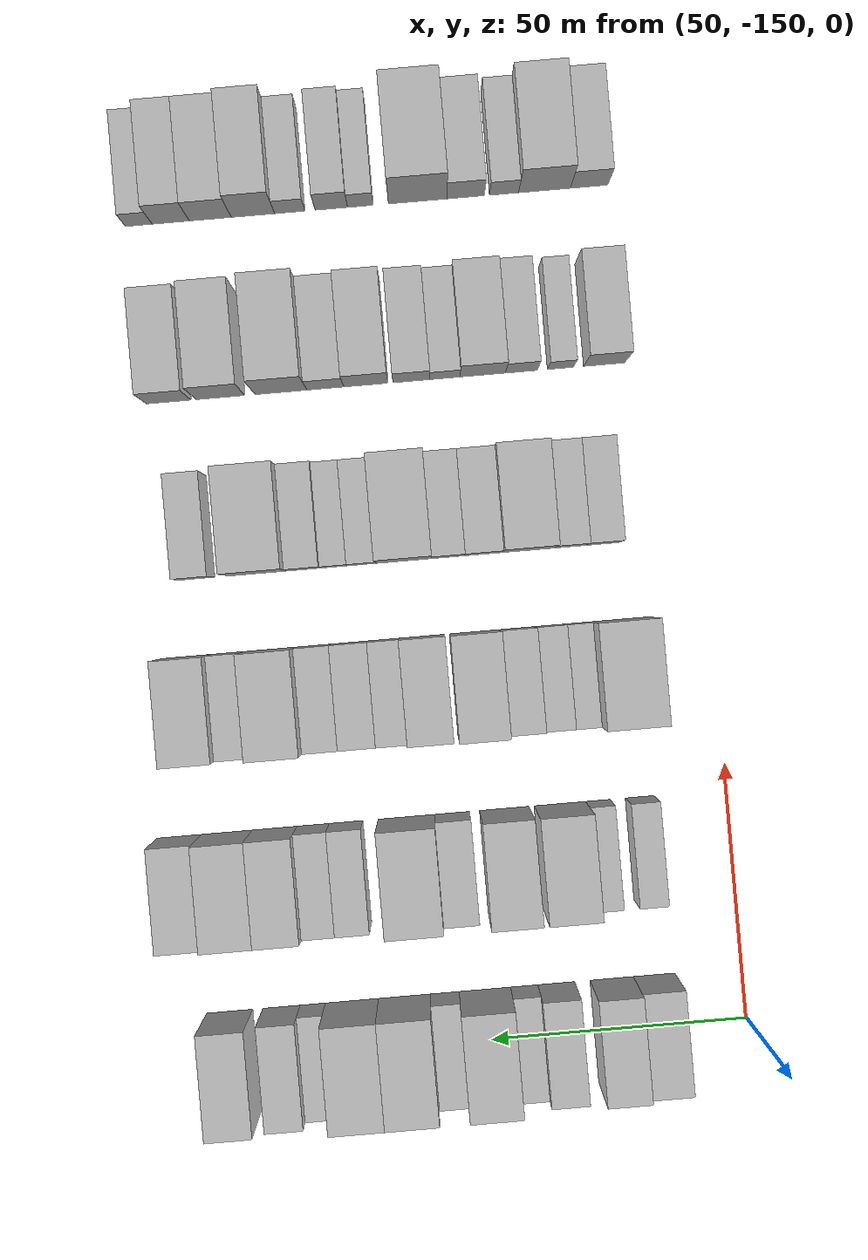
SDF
<sdf version="1.6">
 <world name="default">
  <model name="building_52">
   <static>1</static>
   <pose>50.0000 -132.6514 0 0.000000 0.000000 0.000000</pose>
   <link name="link">
    <pose>0 0 9.00 0 0 0</pose>
    <collision name="collision"><geometry><box><size>20.0000 8.1687 18.0000</size></box></geometry></collision>
    <visual name="visual">
     <cast_shadows>0</cast_shadows>
     <geometry><box><size>20.0000 8.1687 18.0000</size></box></geometry>
     <material>
      <script>
       <uri>model://HANNAS_wall/materials/scripts</uri>
       <uri>model://HANNAS_wall/materials/textures</uri>
       <name>vrc/HANNAS_wall</name>
      </script>
     </material>
    </visual>
   </link>
  </model>
  <model name="building_53">
   <static>1</static>
   <pose>50.0000 -124.3221 0 0.000000 0.000000 0.000000</pose>
   <link name="link">
    <pose>0 0 10.50 0 0 0</pose>
    <collision name="collision"><geometry><box><size>20.0000 8.4899 21.0000</size></box></geometry></collision>
    <visual name="visual">
     <cast_shadows>0</cast_shadows>
     <geometry><box><size>20.0000 8.4899 21.0000</size></box></geometry>
     <material>
      <script>
       <uri>model://HANNAS_wall/materials/scripts</uri>
       <uri>model://HANNAS_wall/materials/textures</uri>
       <name>vrc/HANNAS_wall</name>
      </script>
     </material>
    </visual>
   </link>
  </model>
  <model name="building_54">
   <static>1</static>
   <pose>50.0000 -113.4491 0 0.000000 0.000000 0.000000</pose>
   <link name="link">
    <pose>0 0 9.00 0 0 0</pose>
    <collision name="collision"><geometry><box><size>20.0000 7.2561 18.0000</size></box></geometry></collision>
    <visual name="visual">
     <cast_shadows>0</cast_shadows>
     <geometry><box><size>20.0000 7.2561 18.0000</size></box></geometry>
     <material>
      <script>
       <uri>model://HANNAS_wall/materials/scripts</uri>
       <uri>model://HANNAS_wall/materials/textures</uri>
       <name>vrc/HANNAS_wall</name>
      </script>
     </material>
    </visual>
   </link>
  </model>
  <model name="building_55">
   <static>1</static>
   <pose>50.0000 -107.1371 0 0.000000 0.000000 0.000000</pose>
   <link name="link">
    <pose>0 0 6.00 0 0 0</pose>
    <collision name="collision"><geometry><box><size>20.0000 5.3679 12.0000</size></box></geometry></collision>
    <visual name="visual">
     <cast_shadows>0</cast_shadows>
     <geometry><box><size>20.0000 5.3679 12.0000</size></box></geometry>
     <material>
      <script>
       <uri>model://HANNAS_wall/materials/scripts</uri>
       <uri>model://HANNAS_wall/materials/textures</uri>
       <name>vrc/HANNAS_wall</name>
      </script>
     </material>
    </visual>
   </link>
  </model>
  <model name="building_56">
   <static>1</static>
   <pose>50.0000 -99.4139 0 0.000000 0.000000 0.000000</pose>
   <link name="link">
    <pose>0 0 12.00 0 0 0</pose>
    <collision name="collision"><geometry><box><size>20.0000 10.0786 24.0000</size></box></geometry></collision>
    <visual name="visual">
     <cast_shadows>0</cast_shadows>
     <geometry><box><size>20.0000 10.0786 24.0000</size></box></geometry>
     <material>
      <script>
       <uri>model://HANNAS_wall/materials/scripts</uri>
       <uri>model://HANNAS_wall/materials/textures</uri>
       <name>vrc/HANNAS_wall</name>
      </script>
     </material>
    </visual>
   </link>
  </model>
  <model name="building_57">
   <static>1</static>
   <pose>50.0000 -91.5494 0 0.000000 0.000000 0.000000</pose>
   <link name="link">
    <pose>0 0 6.00 0 0 0</pose>
    <collision name="collision"><geometry><box><size>20.0000 5.6504 12.0000</size></box></geometry></collision>
    <visual name="visual">
     <cast_shadows>0</cast_shadows>
     <geometry><box><size>20.0000 5.6504 12.0000</size></box></geometry>
     <material>
      <script>
       <uri>model://HANNAS_wall/materials/scripts</uri>
       <uri>model://HANNAS_wall/materials/textures</uri>
       <name>vrc/HANNAS_wall</name>
      </script>
     </material>
    </visual>
   </link>
  </model>
  <model name="building_58">
   <static>1</static>
   <pose>50.0000 -83.6177 0 0.000000 0.000000 0.000000</pose>
   <link name="link">
    <pose>0 0 12.00 0 0 0</pose>
    <collision name="collision"><geometry><box><size>20.0000 10.2130 24.0000</size></box></geometry></collision>
    <visual name="visual">
     <cast_shadows>0</cast_shadows>
     <geometry><box><size>20.0000 10.2130 24.0000</size></box></geometry>
     <material>
      <script>
       <uri>model://HANNAS_wall/materials/scripts</uri>
       <uri>model://HANNAS_wall/materials/textures</uri>
       <name>vrc/HANNAS_wall</name>
      </script>
     </material>
    </visual>
   </link>
  </model>
  <model name="building_59">
   <static>1</static>
   <pose>50.0000 -73.2745 0 0.000000 0.000000 0.000000</pose>
   <link name="link">
    <pose>0 0 12.00 0 0 0</pose>
    <collision name="collision"><geometry><box><size>20.0000 10.4735 24.0000</size></box></geometry></collision>
    <visual name="visual">
     <cast_shadows>0</cast_shadows>
     <geometry><box><size>20.0000 10.4735 24.0000</size></box></geometry>
     <material>
      <script>
       <uri>model://HANNAS_wall/materials/scripts</uri>
       <uri>model://HANNAS_wall/materials/textures</uri>
       <name>vrc/HANNAS_wall</name>
      </script>
     </material>
    </visual>
   </link>
  </model>
  <model name="building_60">
   <static>1</static>
   <pose>50.0000 -65.5673 0 0.000000 0.000000 0.000000</pose>
   <link name="link">
    <pose>0 0 6.00 0 0 0</pose>
    <collision name="collision"><geometry><box><size>20.0000 4.9408 12.0000</size></box></geometry></collision>
    <visual name="visual">
     <cast_shadows>0</cast_shadows>
     <geometry><box><size>20.0000 4.9408 12.0000</size></box></geometry>
     <material>
      <script>
       <uri>model://HANNAS_wall/materials/scripts</uri>
       <uri>model://HANNAS_wall/materials/textures</uri>
       <name>vrc/HANNAS_wall</name>
      </script>
     </material>
    </visual>
   </link>
  </model>
  <model name="building_61">
   <static>1</static>
   <pose>50.0000 -59.4401 0 0.000000 0.000000 0.000000</pose>
   <link name="link">
    <pose>0 0 9.00 0 0 0</pose>
    <collision name="collision"><geometry><box><size>20.0000 7.3136 18.0000</size></box></geometry></collision>
    <visual name="visual">
     <cast_shadows>0</cast_shadows>
     <geometry><box><size>20.0000 7.3136 18.0000</size></box></geometry>
     <material>
      <script>
       <uri>model://HANNAS_wall/materials/scripts</uri>
       <uri>model://HANNAS_wall/materials/textures</uri>
       <name>vrc/HANNAS_wall</name>
      </script>
     </material>
    </visual>
   </link>
  </model>
  <model name="building_62">
   <static>1</static>
   <pose>50.0000 -49.2737 0 0.000000 0.000000 0.000000</pose>
   <link name="link">
    <pose>0 0 10.50 0 0 0</pose>
    <collision name="collision"><geometry><box><size>20.0000 9.0193 21.0000</size></box></geometry></collision>
    <visual name="visual">
     <cast_shadows>0</cast_shadows>
     <geometry><box><size>20.0000 9.0193 21.0000</size></box></geometry>
     <material>
      <script>
       <uri>model://HANNAS_wall/materials/scripts</uri>
       <uri>model://HANNAS_wall/materials/textures</uri>
       <name>vrc/HANNAS_wall</name>
      </script>
     </material>
    </visual>
   </link>
  </model>
  <model name="building_185">
   <static>1</static>
   <pose>85.0000 -132.8058 0 0.000000 0.000000 0.000000</pose>
   <link name="link">
    <pose>0 0 6.00 0 0 0</pose>
    <collision name="collision"><geometry><box><size>20.0000 5.6044 12.0000</size></box></geometry></collision>
    <visual name="visual">
     <cast_shadows>0</cast_shadows>
     <geometry><box><size>20.0000 5.6044 12.0000</size></box></geometry>
     <material>
      <script>
       <uri>model://HANNAS_wall/materials/scripts</uri>
       <uri>model://HANNAS_wall/materials/textures</uri>
       <name>vrc/HANNAS_wall</name>
      </script>
     </material>
    </visual>
   </link>
  </model>
  <model name="building_186">
   <static>1</static>
   <pose>85.0000 -124.5791 0 0.000000 0.000000 0.000000</pose>
   <link name="link">
    <pose>0 0 6.00 0 0 0</pose>
    <collision name="collision"><geometry><box><size>20.0000 4.8491 12.0000</size></box></geometry></collision>
    <visual name="visual">
     <cast_shadows>0</cast_shadows>
     <geometry><box><size>20.0000 4.8491 12.0000</size></box></geometry>
     <material>
      <script>
       <uri>model://HANNAS_wall/materials/scripts</uri>
       <uri>model://HANNAS_wall/materials/textures</uri>
       <name>vrc/HANNAS_wall</name>
      </script>
     </material>
    </visual>
   </link>
  </model>
  <model name="building_187">
   <static>1</static>
   <pose>85.0000 -117.1150 0 0.000000 0.000000 0.000000</pose>
   <link name="link">
    <pose>0 0 12.00 0 0 0</pose>
    <collision name="collision"><geometry><box><size>20.0000 10.0792 24.0000</size></box></geometry></collision>
    <visual name="visual">
     <cast_shadows>0</cast_shadows>
     <geometry><box><size>20.0000 10.0792 24.0000</size></box></geometry>
     <material>
      <script>
       <uri>model://HANNAS_wall/materials/scripts</uri>
       <uri>model://HANNAS_wall/materials/textures</uri>
       <name>vrc/HANNAS_wall</name>
      </script>
     </material>
    </visual>
   </link>
  </model>
  <model name="building_188">
   <static>1</static>
   <pose>85.0000 -106.2152 0 0.000000 0.000000 0.000000</pose>
   <link name="link">
    <pose>0 0 12.00 0 0 0</pose>
    <collision name="collision"><geometry><box><size>20.0000 9.7204 24.0000</size></box></geometry></collision>
    <visual name="visual">
     <cast_shadows>0</cast_shadows>
     <geometry><box><size>20.0000 9.7204 24.0000</size></box></geometry>
     <material>
      <script>
       <uri>model://HANNAS_wall/materials/scripts</uri>
       <uri>model://HANNAS_wall/materials/textures</uri>
       <name>vrc/HANNAS_wall</name>
      </script>
     </material>
    </visual>
   </link>
  </model>
  <model name="building_189">
   <static>1</static>
   <pose>85.0000 -95.9306 0 0.000000 0.000000 0.000000</pose>
   <link name="link">
    <pose>0 0 7.50 0 0 0</pose>
    <collision name="collision"><geometry><box><size>20.0000 6.8488 15.0000</size></box></geometry></collision>
    <visual name="visual">
     <cast_shadows>0</cast_shadows>
     <geometry><box><size>20.0000 6.8488 15.0000</size></box></geometry>
     <material>
      <script>
       <uri>model://HANNAS_wall/materials/scripts</uri>
       <uri>model://HANNAS_wall/materials/textures</uri>
       <name>vrc/HANNAS_wall</name>
      </script>
     </material>
    </visual>
   </link>
  </model>
  <model name="building_190">
   <static>1</static>
   <pose>85.0000 -86.9775 0 0.000000 0.000000 0.000000</pose>
   <link name="link">
    <pose>0 0 12.00 0 0 0</pose>
    <collision name="collision"><geometry><box><size>20.0000 11.0574 24.0000</size></box></geometry></collision>
    <visual name="visual">
     <cast_shadows>0</cast_shadows>
     <geometry><box><size>20.0000 11.0574 24.0000</size></box></geometry>
     <material>
      <script>
       <uri>model://HANNAS_wall/materials/scripts</uri>
       <uri>model://HANNAS_wall/materials/textures</uri>
       <name>vrc/HANNAS_wall</name>
      </script>
     </material>
    </visual>
   </link>
  </model>
  <model name="building_191">
   <static>1</static>
   <pose>85.0000 -75.1466 0 0.000000 0.000000 0.000000</pose>
   <link name="link">
    <pose>0 0 7.50 0 0 0</pose>
    <collision name="collision"><geometry><box><size>20.0000 6.6045 15.0000</size></box></geometry></collision>
    <visual name="visual">
     <cast_shadows>0</cast_shadows>
     <geometry><box><size>20.0000 6.6045 15.0000</size></box></geometry>
     <material>
      <script>
       <uri>model://HANNAS_wall/materials/scripts</uri>
       <uri>model://HANNAS_wall/materials/textures</uri>
       <name>vrc/HANNAS_wall</name>
      </script>
     </material>
    </visual>
   </link>
  </model>
  <model name="building_192">
   <static>1</static>
   <pose>85.0000 -68.6907 0 0.000000 0.000000 0.000000</pose>
   <link name="link">
    <pose>0 0 7.50 0 0 0</pose>
    <collision name="collision"><geometry><box><size>20.0000 6.3074 15.0000</size></box></geometry></collision>
    <visual name="visual">
     <cast_shadows>0</cast_shadows>
     <geometry><box><size>20.0000 6.3074 15.0000</size></box></geometry>
     <material>
      <script>
       <uri>model://HANNAS_wall/materials/scripts</uri>
       <uri>model://HANNAS_wall/materials/textures</uri>
       <name>vrc/HANNAS_wall</name>
      </script>
     </material>
    </visual>
   </link>
  </model>
  <model name="building_193">
   <static>1</static>
   <pose>85.0000 -61.1295 0 0.000000 0.000000 0.000000</pose>
   <link name="link">
    <pose>0 0 10.50 0 0 0</pose>
    <collision name="collision"><geometry><box><size>20.0000 8.8150 21.0000</size></box></geometry></collision>
    <visual name="visual">
     <cast_shadows>0</cast_shadows>
     <geometry><box><size>20.0000 8.8150 21.0000</size></box></geometry>
     <material>
      <script>
       <uri>model://HANNAS_wall/materials/scripts</uri>
       <uri>model://HANNAS_wall/materials/textures</uri>
       <name>vrc/HANNAS_wall</name>
      </script>
     </material>
    </visual>
   </link>
  </model>
  <model name="building_194">
   <static>1</static>
   <pose>85.0000 -51.7162 0 0.000000 0.000000 0.000000</pose>
   <link name="link">
    <pose>0 0 10.50 0 0 0</pose>
    <collision name="collision"><geometry><box><size>20.0000 10.0115 21.0000</size></box></geometry></collision>
    <visual name="visual">
     <cast_shadows>0</cast_shadows>
     <geometry><box><size>20.0000 10.0115 21.0000</size></box></geometry>
     <material>
      <script>
       <uri>model://HANNAS_wall/materials/scripts</uri>
       <uri>model://HANNAS_wall/materials/textures</uri>
       <name>vrc/HANNAS_wall</name>
      </script>
     </material>
    </visual>
   </link>
  </model>
  <model name="building_195">
   <static>1</static>
   <pose>85.0000 -42.3811 0 0.000000 0.000000 0.000000</pose>
   <link name="link">
    <pose>0 0 9.00 0 0 0</pose>
    <collision name="collision"><geometry><box><size>20.0000 8.6588 18.0000</size></box></geometry></collision>
    <visual name="visual">
     <cast_shadows>0</cast_shadows>
     <geometry><box><size>20.0000 8.6588 18.0000</size></box></geometry>
     <material>
      <script>
       <uri>model://HANNAS_wall/materials/scripts</uri>
       <uri>model://HANNAS_wall/materials/textures</uri>
       <name>vrc/HANNAS_wall</name>
      </script>
     </material>
    </visual>
   </link>
  </model>
  <model name="building_294">
   <static>1</static>
   <pose>120.0000 -131.6684 0 0.000000 0.000000 0.000000</pose>
   <link name="link">
    <pose>0 0 12.00 0 0 0</pose>
    <collision name="collision"><geometry><box><size>20.0000 11.7809 24.0000</size></box></geometry></collision>
    <visual name="visual">
     <cast_shadows>0</cast_shadows>
     <geometry><box><size>20.0000 11.7809 24.0000</size></box></geometry>
     <material>
      <script>
       <uri>model://HANNAS_wall/materials/scripts</uri>
       <uri>model://HANNAS_wall/materials/textures</uri>
       <name>vrc/HANNAS_wall</name>
      </script>
     </material>
    </visual>
   </link>
  </model>
  <model name="building_295">
   <static>1</static>
   <pose>120.0000 -123.3292 0 0.000000 0.000000 0.000000</pose>
   <link name="link">
    <pose>0 0 6.00 0 0 0</pose>
    <collision name="collision"><geometry><box><size>20.0000 4.8975 12.0000</size></box></geometry></collision>
    <visual name="visual">
     <cast_shadows>0</cast_shadows>
     <geometry><box><size>20.0000 4.8975 12.0000</size></box></geometry>
     <material>
      <script>
       <uri>model://HANNAS_wall/materials/scripts</uri>
       <uri>model://HANNAS_wall/materials/textures</uri>
       <name>vrc/HANNAS_wall</name>
      </script>
     </material>
    </visual>
   </link>
  </model>
  <model name="building_296">
   <static>1</static>
   <pose>120.0000 -117.9647 0 0.000000 0.000000 0.000000</pose>
   <link name="link">
    <pose>0 0 6.00 0 0 0</pose>
    <collision name="collision"><geometry><box><size>20.0000 5.8316 12.0000</size></box></geometry></collision>
    <visual name="visual">
     <cast_shadows>0</cast_shadows>
     <geometry><box><size>20.0000 5.8316 12.0000</size></box></geometry>
     <material>
      <script>
       <uri>model://HANNAS_wall/materials/scripts</uri>
       <uri>model://HANNAS_wall/materials/textures</uri>
       <name>vrc/HANNAS_wall</name>
      </script>
     </material>
    </visual>
   </link>
  </model>
  <model name="building_297">
   <static>1</static>
   <pose>120.0000 -111.5391 0 0.000000 0.000000 0.000000</pose>
   <link name="link">
    <pose>0 0 7.50 0 0 0</pose>
    <collision name="collision"><geometry><box><size>20.0000 7.0196 15.0000</size></box></geometry></collision>
    <visual name="visual">
     <cast_shadows>0</cast_shadows>
     <geometry><box><size>20.0000 7.0196 15.0000</size></box></geometry>
     <material>
      <script>
       <uri>model://HANNAS_wall/materials/scripts</uri>
       <uri>model://HANNAS_wall/materials/textures</uri>
       <name>vrc/HANNAS_wall</name>
      </script>
     </material>
    </visual>
   </link>
  </model>
  <model name="building_298">
   <static>1</static>
   <pose>120.0000 -103.2214 0 0.000000 0.000000 0.000000</pose>
   <link name="link">
    <pose>0 0 12.00 0 0 0</pose>
    <collision name="collision"><geometry><box><size>20.0000 9.6158 24.0000</size></box></geometry></collision>
    <visual name="visual">
     <cast_shadows>0</cast_shadows>
     <geometry><box><size>20.0000 9.6158 24.0000</size></box></geometry>
     <material>
      <script>
       <uri>model://HANNAS_wall/materials/scripts</uri>
       <uri>model://HANNAS_wall/materials/textures</uri>
       <name>vrc/HANNAS_wall</name>
      </script>
     </material>
    </visual>
   </link>
  </model>
  <model name="building_299">
   <static>1</static>
   <pose>120.0000 -93.0512 0 0.000000 0.000000 0.000000</pose>
   <link name="link">
    <pose>0 0 10.50 0 0 0</pose>
    <collision name="collision"><geometry><box><size>20.0000 8.7247 21.0000</size></box></geometry></collision>
    <visual name="visual">
     <cast_shadows>0</cast_shadows>
     <geometry><box><size>20.0000 8.7247 21.0000</size></box></geometry>
     <material>
      <script>
       <uri>model://HANNAS_wall/materials/scripts</uri>
       <uri>model://HANNAS_wall/materials/textures</uri>
       <name>vrc/HANNAS_wall</name>
      </script>
     </material>
    </visual>
   </link>
  </model>
  <model name="building_300">
   <static>1</static>
   <pose>120.0000 -85.6420 0 0.000000 0.000000 0.000000</pose>
   <link name="link">
    <pose>0 0 7.50 0 0 0</pose>
    <collision name="collision"><geometry><box><size>20.0000 6.0937 15.0000</size></box></geometry></collision>
    <visual name="visual">
     <cast_shadows>0</cast_shadows>
     <geometry><box><size>20.0000 6.0937 15.0000</size></box></geometry>
     <material>
      <script>
       <uri>model://HANNAS_wall/materials/scripts</uri>
       <uri>model://HANNAS_wall/materials/textures</uri>
       <name>vrc/HANNAS_wall</name>
      </script>
     </material>
    </visual>
   </link>
  </model>
  <model name="building_301">
   <static>1</static>
   <pose>120.0000 -78.9924 0 0.000000 0.000000 0.000000</pose>
   <link name="link">
    <pose>0 0 7.50 0 0 0</pose>
    <collision name="collision"><geometry><box><size>20.0000 7.2056 15.0000</size></box></geometry></collision>
    <visual name="visual">
     <cast_shadows>0</cast_shadows>
     <geometry><box><size>20.0000 7.2056 15.0000</size></box></geometry>
     <material>
      <script>
       <uri>model://HANNAS_wall/materials/scripts</uri>
       <uri>model://HANNAS_wall/materials/textures</uri>
       <name>vrc/HANNAS_wall</name>
      </script>
     </material>
    </visual>
   </link>
  </model>
  <model name="building_302">
   <static>1</static>
   <pose>120.0000 -72.0039 0 0.000000 0.000000 0.000000</pose>
   <link name="link">
    <pose>0 0 7.50 0 0 0</pose>
    <collision name="collision"><geometry><box><size>20.0000 6.7714 15.0000</size></box></geometry></collision>
    <visual name="visual">
     <cast_shadows>0</cast_shadows>
     <geometry><box><size>20.0000 6.7714 15.0000</size></box></geometry>
     <material>
      <script>
       <uri>model://HANNAS_wall/materials/scripts</uri>
       <uri>model://HANNAS_wall/materials/textures</uri>
       <name>vrc/HANNAS_wall</name>
      </script>
     </material>
    </visual>
   </link>
  </model>
  <model name="building_303">
   <static>1</static>
   <pose>120.0000 -63.5129 0 0.000000 0.000000 0.000000</pose>
   <link name="link">
    <pose>0 0 12.00 0 0 0</pose>
    <collision name="collision"><geometry><box><size>20.0000 10.2105 24.0000</size></box></geometry></collision>
    <visual name="visual">
     <cast_shadows>0</cast_shadows>
     <geometry><box><size>20.0000 10.2105 24.0000</size></box></geometry>
     <material>
      <script>
       <uri>model://HANNAS_wall/materials/scripts</uri>
       <uri>model://HANNAS_wall/materials/textures</uri>
       <name>vrc/HANNAS_wall</name>
      </script>
     </material>
    </visual>
   </link>
  </model>
  <model name="building_304">
   <static>1</static>
   <pose>120.0000 -55.1974 0 0.000000 0.000000 0.000000</pose>
   <link name="link">
    <pose>0 0 7.50 0 0 0</pose>
    <collision name="collision"><geometry><box><size>20.0000 6.4207 15.0000</size></box></geometry></collision>
    <visual name="visual">
     <cast_shadows>0</cast_shadows>
     <geometry><box><size>20.0000 6.4207 15.0000</size></box></geometry>
     <material>
      <script>
       <uri>model://HANNAS_wall/materials/scripts</uri>
       <uri>model://HANNAS_wall/materials/textures</uri>
       <name>vrc/HANNAS_wall</name>
      </script>
     </material>
    </visual>
   </link>
  </model>
  <model name="building_305">
   <static>1</static>
   <pose>120.0000 -47.0437 0 0.000000 0.000000 0.000000</pose>
   <link name="link">
    <pose>0 0 10.50 0 0 0</pose>
    <collision name="collision"><geometry><box><size>20.0000 9.8868 21.0000</size></box></geometry></collision>
    <visual name="visual">
     <cast_shadows>0</cast_shadows>
     <geometry><box><size>20.0000 9.8868 21.0000</size></box></geometry>
     <material>
      <script>
       <uri>model://HANNAS_wall/materials/scripts</uri>
       <uri>model://HANNAS_wall/materials/textures</uri>
       <name>vrc/HANNAS_wall</name>
      </script>
     </material>
    </visual>
   </link>
  </model>
  <model name="building_416">
   <static>1</static>
   <pose>155.0000 -129.6893 0 0.000000 0.000000 0.000000</pose>
   <link name="link">
    <pose>0 0 7.50 0 0 0</pose>
    <collision name="collision"><geometry><box><size>20.0000 6.5421 15.0000</size></box></geometry></collision>
    <visual name="visual">
     <cast_shadows>0</cast_shadows>
     <geometry><box><size>20.0000 6.5421 15.0000</size></box></geometry>
     <material>
      <script>
       <uri>model://HANNAS_wall/materials/scripts</uri>
       <uri>model://HANNAS_wall/materials/textures</uri>
       <name>vrc/HANNAS_wall</name>
      </script>
     </material>
    </visual>
   </link>
  </model>
  <model name="building_417">
   <static>1</static>
   <pose>155.0000 -123.3213 0 0.000000 0.000000 0.000000</pose>
   <link name="link">
    <pose>0 0 7.50 0 0 0</pose>
    <collision name="collision"><geometry><box><size>20.0000 6.1937 15.0000</size></box></geometry></collision>
    <visual name="visual">
     <cast_shadows>0</cast_shadows>
     <geometry><box><size>20.0000 6.1937 15.0000</size></box></geometry>
     <material>
      <script>
       <uri>model://HANNAS_wall/materials/scripts</uri>
       <uri>model://HANNAS_wall/materials/textures</uri>
       <name>vrc/HANNAS_wall</name>
      </script>
     </material>
    </visual>
   </link>
  </model>
  <model name="building_418">
   <static>1</static>
   <pose>155.0000 -115.0922 0 0.000000 0.000000 0.000000</pose>
   <link name="link">
    <pose>0 0 10.50 0 0 0</pose>
    <collision name="collision"><geometry><box><size>20.0000 10.2645 21.0000</size></box></geometry></collision>
    <visual name="visual">
     <cast_shadows>0</cast_shadows>
     <geometry><box><size>20.0000 10.2645 21.0000</size></box></geometry>
     <material>
      <script>
       <uri>model://HANNAS_wall/materials/scripts</uri>
       <uri>model://HANNAS_wall/materials/textures</uri>
       <name>vrc/HANNAS_wall</name>
      </script>
     </material>
    </visual>
   </link>
  </model>
  <model name="building_419">
   <static>1</static>
   <pose>155.0000 -106.2844 0 0.000000 0.000000 0.000000</pose>
   <link name="link">
    <pose>0 0 7.50 0 0 0</pose>
    <collision name="collision"><geometry><box><size>20.0000 7.3512 15.0000</size></box></geometry></collision>
    <visual name="visual">
     <cast_shadows>0</cast_shadows>
     <geometry><box><size>20.0000 7.3512 15.0000</size></box></geometry>
     <material>
      <script>
       <uri>model://HANNAS_wall/materials/scripts</uri>
       <uri>model://HANNAS_wall/materials/textures</uri>
       <name>vrc/HANNAS_wall</name>
      </script>
     </material>
    </visual>
   </link>
  </model>
  <model name="building_420">
   <static>1</static>
   <pose>155.0000 -99.4098 0 0.000000 0.000000 0.000000</pose>
   <link name="link">
    <pose>0 0 7.50 0 0 0</pose>
    <collision name="collision"><geometry><box><size>20.0000 6.3980 15.0000</size></box></geometry></collision>
    <visual name="visual">
     <cast_shadows>0</cast_shadows>
     <geometry><box><size>20.0000 6.3980 15.0000</size></box></geometry>
     <material>
      <script>
       <uri>model://HANNAS_wall/materials/scripts</uri>
       <uri>model://HANNAS_wall/materials/textures</uri>
       <name>vrc/HANNAS_wall</name>
      </script>
     </material>
    </visual>
   </link>
  </model>
  <model name="building_421">
   <static>1</static>
   <pose>155.0000 -90.8319 0 0.000000 0.000000 0.000000</pose>
   <link name="link">
    <pose>0 0 12.00 0 0 0</pose>
    <collision name="collision"><geometry><box><size>20.0000 10.7577 24.0000</size></box></geometry></collision>
    <visual name="visual">
     <cast_shadows>0</cast_shadows>
     <geometry><box><size>20.0000 10.7577 24.0000</size></box></geometry>
     <material>
      <script>
       <uri>model://HANNAS_wall/materials/scripts</uri>
       <uri>model://HANNAS_wall/materials/textures</uri>
       <name>vrc/HANNAS_wall</name>
      </script>
     </material>
    </visual>
   </link>
  </model>
  <model name="building_422">
   <static>1</static>
   <pose>155.0000 -82.6700 0 0.000000 0.000000 0.000000</pose>
   <link name="link">
    <pose>0 0 6.00 0 0 0</pose>
    <collision name="collision"><geometry><box><size>20.0000 5.5661 12.0000</size></box></geometry></collision>
    <visual name="visual">
     <cast_shadows>0</cast_shadows>
     <geometry><box><size>20.0000 5.5661 12.0000</size></box></geometry>
     <material>
      <script>
       <uri>model://HANNAS_wall/materials/scripts</uri>
       <uri>model://HANNAS_wall/materials/textures</uri>
       <name>vrc/HANNAS_wall</name>
      </script>
     </material>
    </visual>
   </link>
  </model>
  <model name="building_423">
   <static>1</static>
   <pose>155.0000 -77.3104 0 0.000000 0.000000 0.000000</pose>
   <link name="link">
    <pose>0 0 6.00 0 0 0</pose>
    <collision name="collision"><geometry><box><size>20.0000 5.1530 12.0000</size></box></geometry></collision>
    <visual name="visual">
     <cast_shadows>0</cast_shadows>
     <geometry><box><size>20.0000 5.1530 12.0000</size></box></geometry>
     <material>
      <script>
       <uri>model://HANNAS_wall/materials/scripts</uri>
       <uri>model://HANNAS_wall/materials/textures</uri>
       <name>vrc/HANNAS_wall</name>
      </script>
     </material>
    </visual>
   </link>
  </model>
  <model name="building_424">
   <static>1</static>
   <pose>155.0000 -71.4626 0 0.000000 0.000000 0.000000</pose>
   <link name="link">
    <pose>0 0 7.50 0 0 0</pose>
    <collision name="collision"><geometry><box><size>20.0000 6.5427 15.0000</size></box></geometry></collision>
    <visual name="visual">
     <cast_shadows>0</cast_shadows>
     <geometry><box><size>20.0000 6.5427 15.0000</size></box></geometry>
     <material>
      <script>
       <uri>model://HANNAS_wall/materials/scripts</uri>
       <uri>model://HANNAS_wall/materials/textures</uri>
       <name>vrc/HANNAS_wall</name>
      </script>
     </material>
    </visual>
   </link>
  </model>
  <model name="building_425">
   <static>1</static>
   <pose>155.0000 -62.4073 0 0.000000 0.000000 0.000000</pose>
   <link name="link">
    <pose>0 0 12.00 0 0 0</pose>
    <collision name="collision"><geometry><box><size>20.0000 11.5679 24.0000</size></box></geometry></collision>
    <visual name="visual">
     <cast_shadows>0</cast_shadows>
     <geometry><box><size>20.0000 11.5679 24.0000</size></box></geometry>
     <material>
      <script>
       <uri>model://HANNAS_wall/materials/scripts</uri>
       <uri>model://HANNAS_wall/materials/textures</uri>
       <name>vrc/HANNAS_wall</name>
      </script>
     </material>
    </visual>
   </link>
  </model>
  <model name="building_426">
   <static>1</static>
   <pose>155.0000 -50.1956 0 0.000000 0.000000 0.000000</pose>
   <link name="link">
    <pose>0 0 7.50 0 0 0</pose>
    <collision name="collision"><geometry><box><size>20.0000 6.8556 15.0000</size></box></geometry></collision>
    <visual name="visual">
     <cast_shadows>0</cast_shadows>
     <geometry><box><size>20.0000 6.8556 15.0000</size></box></geometry>
     <material>
      <script>
       <uri>model://HANNAS_wall/materials/scripts</uri>
       <uri>model://HANNAS_wall/materials/textures</uri>
       <name>vrc/HANNAS_wall</name>
      </script>
     </material>
    </visual>
   </link>
  </model>
  <model name="building_534">
   <static>1</static>
   <pose>190.0000 -133.1672 0 0.000000 0.000000 0.000000</pose>
   <link name="link">
    <pose>0 0 9.00 0 0 0</pose>
    <collision name="collision"><geometry><box><size>20.0000 8.1129 18.0000</size></box></geometry></collision>
    <visual name="visual">
     <cast_shadows>0</cast_shadows>
     <geometry><box><size>20.0000 8.1129 18.0000</size></box></geometry>
     <material>
      <script>
       <uri>model://HANNAS_wall/materials/scripts</uri>
       <uri>model://HANNAS_wall/materials/textures</uri>
       <name>vrc/HANNAS_wall</name>
      </script>
     </material>
    </visual>
   </link>
  </model>
  <model name="building_535">
   <static>1</static>
   <pose>190.0000 -124.5532 0 0.000000 0.000000 0.000000</pose>
   <link name="link">
    <pose>0 0 6.00 0 0 0</pose>
    <collision name="collision"><geometry><box><size>20.0000 5.1150 12.0000</size></box></geometry></collision>
    <visual name="visual">
     <cast_shadows>0</cast_shadows>
     <geometry><box><size>20.0000 5.1150 12.0000</size></box></geometry>
     <material>
      <script>
       <uri>model://HANNAS_wall/materials/scripts</uri>
       <uri>model://HANNAS_wall/materials/textures</uri>
       <name>vrc/HANNAS_wall</name>
      </script>
     </material>
    </visual>
   </link>
  </model>
  <model name="building_536">
   <static>1</static>
   <pose>190.0000 -116.8586 0 0.000000 0.000000 0.000000</pose>
   <link name="link">
    <pose>0 0 7.50 0 0 0</pose>
    <collision name="collision"><geometry><box><size>20.0000 6.2744 15.0000</size></box></geometry></collision>
    <visual name="visual">
     <cast_shadows>0</cast_shadows>
     <geometry><box><size>20.0000 6.2744 15.0000</size></box></geometry>
     <material>
      <script>
       <uri>model://HANNAS_wall/materials/scripts</uri>
       <uri>model://HANNAS_wall/materials/textures</uri>
       <name>vrc/HANNAS_wall</name>
      </script>
     </material>
    </visual>
   </link>
  </model>
  <model name="building_537">
   <static>1</static>
   <pose>190.0000 -109.2691 0 0.000000 0.000000 0.000000</pose>
   <link name="link">
    <pose>0 0 9.00 0 0 0</pose>
    <collision name="collision"><geometry><box><size>20.0000 8.9046 18.0000</size></box></geometry></collision>
    <visual name="visual">
     <cast_shadows>0</cast_shadows>
     <geometry><box><size>20.0000 8.9046 18.0000</size></box></geometry>
     <material>
      <script>
       <uri>model://HANNAS_wall/materials/scripts</uri>
       <uri>model://HANNAS_wall/materials/textures</uri>
       <name>vrc/HANNAS_wall</name>
      </script>
     </material>
    </visual>
   </link>
  </model>
  <model name="building_538">
   <static>1</static>
   <pose>190.0000 -101.8581 0 0.000000 0.000000 0.000000</pose>
   <link name="link">
    <pose>0 0 6.00 0 0 0</pose>
    <collision name="collision"><geometry><box><size>20.0000 5.9172 12.0000</size></box></geometry></collision>
    <visual name="visual">
     <cast_shadows>0</cast_shadows>
     <geometry><box><size>20.0000 5.9172 12.0000</size></box></geometry>
     <material>
      <script>
       <uri>model://HANNAS_wall/materials/scripts</uri>
       <uri>model://HANNAS_wall/materials/textures</uri>
       <name>vrc/HANNAS_wall</name>
      </script>
     </material>
    </visual>
   </link>
  </model>
  <model name="building_539">
   <static>1</static>
   <pose>190.0000 -95.3023 0 0.000000 0.000000 0.000000</pose>
   <link name="link">
    <pose>0 0 7.50 0 0 0</pose>
    <collision name="collision"><geometry><box><size>20.0000 7.1944 15.0000</size></box></geometry></collision>
    <visual name="visual">
     <cast_shadows>0</cast_shadows>
     <geometry><box><size>20.0000 7.1944 15.0000</size></box></geometry>
     <material>
      <script>
       <uri>model://HANNAS_wall/materials/scripts</uri>
       <uri>model://HANNAS_wall/materials/textures</uri>
       <name>vrc/HANNAS_wall</name>
      </script>
     </material>
    </visual>
   </link>
  </model>
  <model name="building_540">
   <static>1</static>
   <pose>190.0000 -86.3579 0 0.000000 0.000000 0.000000</pose>
   <link name="link">
    <pose>0 0 9.00 0 0 0</pose>
    <collision name="collision"><geometry><box><size>20.0000 8.6945 18.0000</size></box></geometry></collision>
    <visual name="visual">
     <cast_shadows>0</cast_shadows>
     <geometry><box><size>20.0000 8.6945 18.0000</size></box></geometry>
     <material>
      <script>
       <uri>model://HANNAS_wall/materials/scripts</uri>
       <uri>model://HANNAS_wall/materials/textures</uri>
       <name>vrc/HANNAS_wall</name>
      </script>
     </material>
    </visual>
   </link>
  </model>
  <model name="building_541">
   <static>1</static>
   <pose>190.0000 -78.3872 0 0.000000 0.000000 0.000000</pose>
   <link name="link">
    <pose>0 0 7.50 0 0 0</pose>
    <collision name="collision"><geometry><box><size>20.0000 7.2469 15.0000</size></box></geometry></collision>
    <visual name="visual">
     <cast_shadows>0</cast_shadows>
     <geometry><box><size>20.0000 7.2469 15.0000</size></box></geometry>
     <material>
      <script>
       <uri>model://HANNAS_wall/materials/scripts</uri>
       <uri>model://HANNAS_wall/materials/textures</uri>
       <name>vrc/HANNAS_wall</name>
      </script>
     </material>
    </visual>
   </link>
  </model>
  <model name="building_542">
   <static>1</static>
   <pose>190.0000 -69.6654 0 0.000000 0.000000 0.000000</pose>
   <link name="link">
    <pose>0 0 12.00 0 0 0</pose>
    <collision name="collision"><geometry><box><size>20.0000 10.1965 24.0000</size></box></geometry></collision>
    <visual name="visual">
     <cast_shadows>0</cast_shadows>
     <geometry><box><size>20.0000 10.1965 24.0000</size></box></geometry>
     <material>
      <script>
       <uri>model://HANNAS_wall/materials/scripts</uri>
       <uri>model://HANNAS_wall/materials/textures</uri>
       <name>vrc/HANNAS_wall</name>
      </script>
     </material>
    </visual>
   </link>
  </model>
  <model name="building_543">
   <static>1</static>
   <pose>190.0000 -57.7820 0 0.000000 0.000000 0.000000</pose>
   <link name="link">
    <pose>0 0 10.50 0 0 0</pose>
    <collision name="collision"><geometry><box><size>20.0000 9.5704 21.0000</size></box></geometry></collision>
    <visual name="visual">
     <cast_shadows>0</cast_shadows>
     <geometry><box><size>20.0000 9.5704 21.0000</size></box></geometry>
     <material>
      <script>
       <uri>model://HANNAS_wall/materials/scripts</uri>
       <uri>model://HANNAS_wall/materials/textures</uri>
       <name>vrc/HANNAS_wall</name>
      </script>
     </material>
    </visual>
   </link>
  </model>
  <model name="building_544">
   <static>1</static>
   <pose>190.0000 -47.6120 0 0.000000 0.000000 0.000000</pose>
   <link name="link">
    <pose>0 0 9.00 0 0 0</pose>
    <collision name="collision"><geometry><box><size>20.0000 8.7694 18.0000</size></box></geometry></collision>
    <visual name="visual">
     <cast_shadows>0</cast_shadows>
     <geometry><box><size>20.0000 8.7694 18.0000</size></box></geometry>
     <material>
      <script>
       <uri>model://HANNAS_wall/materials/scripts</uri>
       <uri>model://HANNAS_wall/materials/textures</uri>
       <name>vrc/HANNAS_wall</name>
      </script>
     </material>
    </visual>
   </link>
  </model>
  <model name="building_668">
   <static>1</static>
   <pose>225.0000 -133.2019 0 0.000000 0.000000 0.000000</pose>
   <link name="link">
    <pose>0 0 7.50 0 0 0</pose>
    <collision name="collision"><geometry><box><size>20.0000 7.3401 15.0000</size></box></geometry></collision>
    <visual name="visual">
     <cast_shadows>0</cast_shadows>
     <geometry><box><size>20.0000 7.3401 15.0000</size></box></geometry>
     <material>
      <script>
       <uri>model://HANNAS_wall/materials/scripts</uri>
       <uri>model://HANNAS_wall/materials/textures</uri>
       <name>vrc/HANNAS_wall</name>
      </script>
     </material>
    </visual>
   </link>
  </model>
  <model name="building_669">
   <static>1</static>
   <pose>225.0000 -124.4347 0 0.000000 0.000000 0.000000</pose>
   <link name="link">
    <pose>0 0 10.50 0 0 0</pose>
    <collision name="collision"><geometry><box><size>20.0000 10.1944 21.0000</size></box></geometry></collision>
    <visual name="visual">
     <cast_shadows>0</cast_shadows>
     <geometry><box><size>20.0000 10.1944 21.0000</size></box></geometry>
     <material>
      <script>
       <uri>model://HANNAS_wall/materials/scripts</uri>
       <uri>model://HANNAS_wall/materials/textures</uri>
       <name>vrc/HANNAS_wall</name>
      </script>
     </material>
    </visual>
   </link>
  </model>
  <model name="building_670">
   <static>1</static>
   <pose>225.0000 -116.4806 0 0.000000 0.000000 0.000000</pose>
   <link name="link">
    <pose>0 0 6.00 0 0 0</pose>
    <collision name="collision"><geometry><box><size>20.0000 5.7139 12.0000</size></box></geometry></collision>
    <visual name="visual">
     <cast_shadows>0</cast_shadows>
     <geometry><box><size>20.0000 5.7139 12.0000</size></box></geometry>
     <material>
      <script>
       <uri>model://HANNAS_wall/materials/scripts</uri>
       <uri>model://HANNAS_wall/materials/textures</uri>
       <name>vrc/HANNAS_wall</name>
      </script>
     </material>
    </visual>
   </link>
  </model>
  <model name="building_671">
   <static>1</static>
   <pose>225.0000 -108.9310 0 0.000000 0.000000 0.000000</pose>
   <link name="link">
    <pose>0 0 7.50 0 0 0</pose>
    <collision name="collision"><geometry><box><size>20.0000 7.3853 15.0000</size></box></geometry></collision>
    <visual name="visual">
     <cast_shadows>0</cast_shadows>
     <geometry><box><size>20.0000 7.3853 15.0000</size></box></geometry>
     <material>
      <script>
       <uri>model://HANNAS_wall/materials/scripts</uri>
       <uri>model://HANNAS_wall/materials/textures</uri>
       <name>vrc/HANNAS_wall</name>
      </script>
     </material>
    </visual>
   </link>
  </model>
  <model name="building_672">
   <static>1</static>
   <pose>225.0000 -99.5072 0 0.000000 0.000000 0.000000</pose>
   <link name="link">
    <pose>0 0 12.00 0 0 0</pose>
    <collision name="collision"><geometry><box><size>20.0000 11.4623 24.0000</size></box></geometry></collision>
    <visual name="visual">
     <cast_shadows>0</cast_shadows>
     <geometry><box><size>20.0000 11.4623 24.0000</size></box></geometry>
     <material>
      <script>
       <uri>model://HANNAS_wall/materials/scripts</uri>
       <uri>model://HANNAS_wall/materials/textures</uri>
       <name>vrc/HANNAS_wall</name>
      </script>
     </material>
    </visual>
   </link>
  </model>
  <model name="building_673">
   <static>1</static>
   <pose>225.0000 -88.2619 0 0.000000 0.000000 0.000000</pose>
   <link name="link">
    <pose>0 0 6.00 0 0 0</pose>
    <collision name="collision"><geometry><box><size>20.0000 5.0282 12.0000</size></box></geometry></collision>
    <visual name="visual">
     <cast_shadows>0</cast_shadows>
     <geometry><box><size>20.0000 5.0282 12.0000</size></box></geometry>
     <material>
      <script>
       <uri>model://HANNAS_wall/materials/scripts</uri>
       <uri>model://HANNAS_wall/materials/textures</uri>
       <name>vrc/HANNAS_wall</name>
      </script>
     </material>
    </visual>
   </link>
  </model>
  <model name="building_674">
   <static>1</static>
   <pose>225.0000 -82.5514 0 0.000000 0.000000 0.000000</pose>
   <link name="link">
    <pose>0 0 7.50 0 0 0</pose>
    <collision name="collision"><geometry><box><size>20.0000 6.3929 15.0000</size></box></geometry></collision>
    <visual name="visual">
     <cast_shadows>0</cast_shadows>
     <geometry><box><size>20.0000 6.3929 15.0000</size></box></geometry>
     <material>
      <script>
       <uri>model://HANNAS_wall/materials/scripts</uri>
       <uri>model://HANNAS_wall/materials/textures</uri>
       <name>vrc/HANNAS_wall</name>
      </script>
     </material>
    </visual>
   </link>
  </model>
  <model name="building_675">
   <static>1</static>
   <pose>225.0000 -74.3767 0 0.000000 0.000000 0.000000</pose>
   <link name="link">
    <pose>0 0 6.00 0 0 0</pose>
    <collision name="collision"><geometry><box><size>20.0000 5.9565 12.0000</size></box></geometry></collision>
    <visual name="visual">
     <cast_shadows>0</cast_shadows>
     <geometry><box><size>20.0000 5.9565 12.0000</size></box></geometry>
     <material>
      <script>
       <uri>model://HANNAS_wall/materials/scripts</uri>
       <uri>model://HANNAS_wall/materials/textures</uri>
       <name>vrc/HANNAS_wall</name>
      </script>
     </material>
    </visual>
   </link>
  </model>
  <model name="building_676">
   <static>1</static>
   <pose>225.0000 -67.1421 0 0.000000 0.000000 0.000000</pose>
   <link name="link">
    <pose>0 0 10.50 0 0 0</pose>
    <collision name="collision"><geometry><box><size>20.0000 8.5127 21.0000</size></box></geometry></collision>
    <visual name="visual">
     <cast_shadows>0</cast_shadows>
     <geometry><box><size>20.0000 8.5127 21.0000</size></box></geometry>
     <material>
      <script>
       <uri>model://HANNAS_wall/materials/scripts</uri>
       <uri>model://HANNAS_wall/materials/textures</uri>
       <name>vrc/HANNAS_wall</name>
      </script>
     </material>
    </visual>
   </link>
  </model>
  <model name="building_677">
   <static>1</static>
   <pose>225.0000 -58.7698 0 0.000000 0.000000 0.000000</pose>
   <link name="link">
    <pose>0 0 9.00 0 0 0</pose>
    <collision name="collision"><geometry><box><size>20.0000 8.2319 18.0000</size></box></geometry></collision>
    <visual name="visual">
     <cast_shadows>0</cast_shadows>
     <geometry><box><size>20.0000 8.2319 18.0000</size></box></geometry>
     <material>
      <script>
       <uri>model://HANNAS_wall/materials/scripts</uri>
       <uri>model://HANNAS_wall/materials/textures</uri>
       <name>vrc/HANNAS_wall</name>
      </script>
     </material>
    </visual>
   </link>
  </model>
  <model name="building_678">
   <static>1</static>
   <pose>225.0000 -50.9924 0 0.000000 0.000000 0.000000</pose>
   <link name="link">
    <pose>0 0 9.00 0 0 0</pose>
    <collision name="collision"><geometry><box><size>20.0000 7.3228 18.0000</size></box></geometry></collision>
    <visual name="visual">
     <cast_shadows>0</cast_shadows>
     <geometry><box><size>20.0000 7.3228 18.0000</size></box></geometry>
     <material>
      <script>
       <uri>model://HANNAS_wall/materials/scripts</uri>
       <uri>model://HANNAS_wall/materials/textures</uri>
       <name>vrc/HANNAS_wall</name>
      </script>
     </material>
    </visual>
   </link>
  </model>
  <model name="building_679">
   <static>1</static>
   <pose>225.0000 -44.7054 0 0.000000 0.000000 0.000000</pose>
   <link name="link">
    <pose>0 0 6.00 0 0 0</pose>
    <collision name="collision"><geometry><box><size>20.0000 5.2513 12.0000</size></box></geometry></collision>
    <visual name="visual">
     <cast_shadows>0</cast_shadows>
     <geometry><box><size>20.0000 5.2513 12.0000</size></box></geometry>
     <material>
      <script>
       <uri>model://HANNAS_wall/materials/scripts</uri>
       <uri>model://HANNAS_wall/materials/textures</uri>
       <name>vrc/HANNAS_wall</name>
      </script>
     </material>
    </visual>
   </link>
  </model>
 </world>
</sdf>
